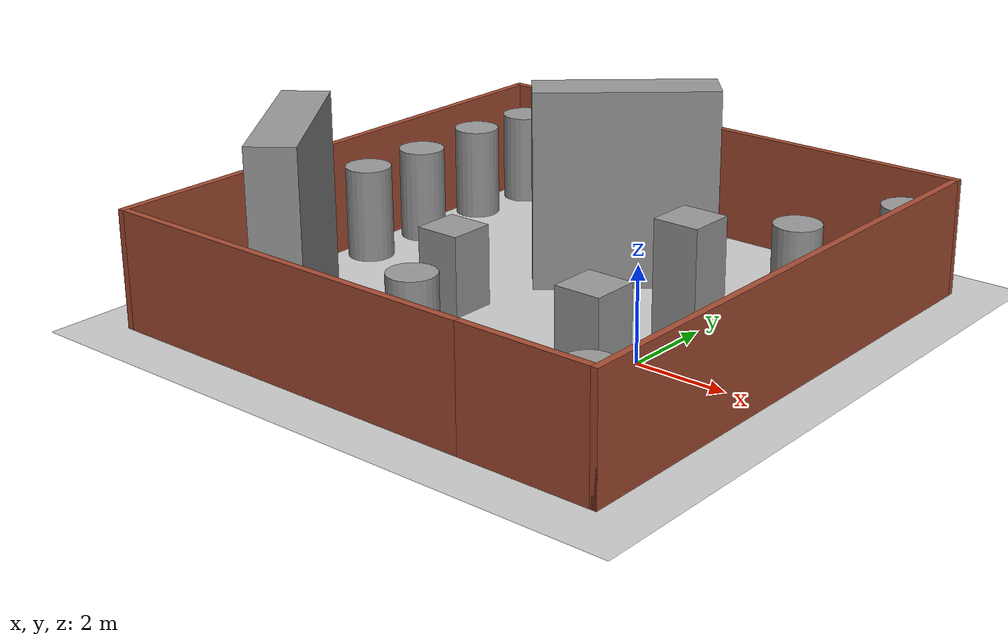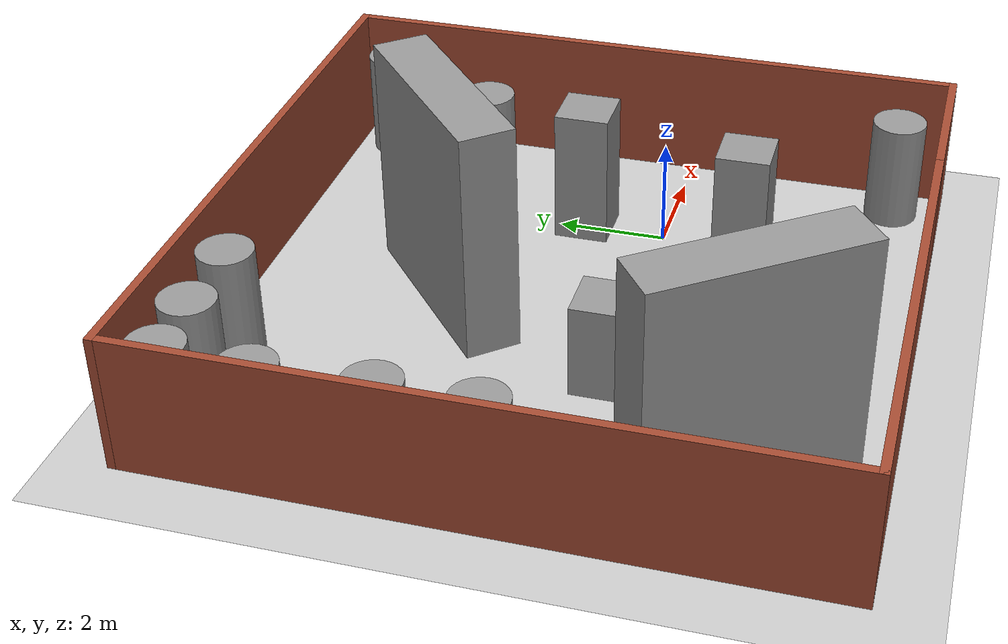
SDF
<sdf version="1.6">
 <world name="default">
  <light name="sun" type="directional">
   <pose>0 0 10 0 -0 0</pose>
   <diffuse>0.8 0.8 0.8 1</diffuse>
   <specular>0.1 0.1 0.1 1</specular>
   <attenuation>
    <range>1000</range>
    <constant>0.9</constant>
    <linear>0.01</linear>
    <quadratic>0.001</quadratic>
   </attenuation>
   <direction>-0.5 0.5 -1</direction>
  </light>
  <model name="ground_plane">
   <static>1</static>
   <link name="link">
    <collision name="collision">
     <geometry><plane><normal>0 0 1</normal><size>100 100</size></plane></geometry>
     <surface><friction><ode><mu>100</mu><mu2>50</mu2></ode></friction></surface>
    </collision>
    <visual name="visual">
     <cast_shadows>0</cast_shadows>
     <geometry><plane><normal>0 0 1</normal><size>100 100</size></plane></geometry>
     <material>
      <script><uri>file://media/materials/scripts/gazebo.material</uri><name>Gazebo/Grey</name></script>
     </material>
    </visual>
   </link>
  </model>
  <gravity>0 0 -9.8</gravity>
  <magnetic_field>6e-06 2.3e-05 -4.2e-05</magnetic_field>
  <atmosphere type="adiabatic"/>
  <physics name="default_physics" default="0" type="ode">
   <max_step_size>0.001</max_step_size>
   <real_time_factor>1</real_time_factor>
   <real_time_update_rate>1000</real_time_update_rate>
  </physics>
  <scene><ambient>0.4 0.4 0.4 1</ambient><background>0.7 0.7 0.7 1</background><shadows>1</shadows></scene>
  <spherical_coordinates>
   <surface_model>EARTH_WGS84</surface_model>
   <latitude_deg>0</latitude_deg>
   <longitude_deg>0</longitude_deg>
   <elevation>0</elevation>
   <heading_deg>0</heading_deg>
  </spherical_coordinates>
  <model name="unit_box_0">
   <pose>-4.61786 -0.010147 0.865917 -5e-06 3e-06 -0.000893</pose>
   <link name="link">
    <inertial>
     <mass>1</mass>
     <inertia>
      <ixx>0.166667</ixx>
      <ixy>0</ixy>
      <ixz>0</ixz>
      <iyy>0.166667</iyy>
      <iyz>0</iyz>
      <izz>0.166667</izz>
     </inertia>
    </inertial>
    <collision name="collision"><geometry><box><size>1 1 1.73184</size></box></geometry></collision>
    <visual name="visual">
     <geometry><box><size>1 1 1.73184</size></box></geometry>
     <material>
      <script><name>Gazebo/Grey</name><uri>file://media/materials/scripts/gazebo.material</uri></script>
     </material>
    </visual>
   </link>
  </model>
  <model name="unit_box_1">
   <pose>0.095283 1.51589 1.27696 -1e-06 1e-06 -0.000601</pose>
   <link name="link">
    <inertial>
     <mass>1</mass>
     <inertia>
      <ixx>0.166667</ixx>
      <ixy>0</ixy>
      <ixz>0</ixz>
      <iyy>0.166667</iyy>
      <iyz>0</iyz>
      <izz>0.166667</izz>
     </inertia>
    </inertial>
    <collision name="collision"><geometry><box><size>1 1 2.55391</size></box></geometry></collision>
    <visual name="visual">
     <geometry><box><size>1 1 2.55391</size></box></geometry>
     <material>
      <script><name>Gazebo/Grey</name><uri>file://media/materials/scripts/gazebo.material</uri></script>
     </material>
    </visual>
   </link>
  </model>
  <model name="unit_box_2">
   <pose>0.113829 -1.48431 1.06098 -1e-06 1e-06 0.000746</pose>
   <link name="link">
    <inertial>
     <mass>1</mass>
     <inertia>
      <ixx>0.166667</ixx>
      <ixy>0</ixy>
      <ixz>0</ixz>
      <iyy>0.166667</iyy>
      <iyz>0</iyz>
      <izz>0.166667</izz>
     </inertia>
    </inertial>
    <collision name="collision"><geometry><box><size>1 1 2.12196</size></box></geometry></collision>
    <visual name="visual">
     <geometry><box><size>1 1 2.12196</size></box></geometry>
     <material>
      <script><name>Gazebo/Grey</name><uri>file://media/materials/scripts/gazebo.material</uri></script>
     </material>
    </visual>
   </link>
  </model>
  <model name="wall_boundary">
   <pose>-2.94 1.005 0 0 -0 0</pose>
   <link name="Wall_0">
    <collision name="Wall_0_Collision">
     <geometry><box><size>3 0.15 2.5</size></box></geometry>
     <pose>0 0 1.25 0 -0 0</pose>
    </collision>
    <visual name="Wall_0_Visual">
     <pose>0 0 1.25 0 -0 0</pose>
     <geometry><box><size>3 0.15 2.5</size></box></geometry>
     <material>
      <script><uri>file://media/materials/scripts/gazebo.material</uri><name>Gazebo/Bricks</name></script>
      <ambient>1 1 1 1</ambient>
     </material>
    </visual>
    <pose>4.375 -5.925 0 0 -0 0</pose>
   </link>
   <link name="Wall_1">
    <collision name="Wall_1_Collision">
     <geometry><box><size>12 0.15 2.5</size></box></geometry>
     <pose>0 0 1.25 0 -0 0</pose>
    </collision>
    <visual name="Wall_1_Visual">
     <pose>0 0 1.25 0 -0 0</pose>
     <geometry><box><size>12 0.15 2.5</size></box></geometry>
     <material>
      <script><uri>file://media/materials/scripts/gazebo.material</uri><name>Gazebo/Bricks</name></script>
      <ambient>1 1 1 1</ambient>
     </material>
    </visual>
    <pose>5.8 0 0 0 -0 1.5708</pose>
   </link>
   <link name="Wall_2">
    <collision name="Wall_2_Collision">
     <geometry><box><size>11.75 0.15 2.5</size></box></geometry>
     <pose>0 0 1.25 0 -0 0</pose>
    </collision>
    <visual name="Wall_2_Visual">
     <pose>0 0 1.25 0 -0 0</pose>
     <geometry><box><size>11.75 0.15 2.5</size></box></geometry>
     <material>
      <script><uri>file://media/materials/scripts/gazebo.material</uri><name>Gazebo/Bricks</name></script>
      <ambient>1 1 1 1</ambient>
     </material>
    </visual>
    <pose>0 5.925 0 0 -0 3.14159</pose>
   </link>
   <link name="Wall_3">
    <collision name="Wall_3_Collision">
     <geometry><box><size>12 0.15 2.5</size></box></geometry>
     <pose>0 0 1.25 0 -0 0</pose>
    </collision>
    <visual name="Wall_3_Visual">
     <pose>0 0 1.25 0 -0 0</pose>
     <geometry><box><size>12 0.15 2.5</size></box></geometry>
     <material>
      <script><uri>file://media/materials/scripts/gazebo.material</uri><name>Gazebo/Bricks</name></script>
      <ambient>1 1 1 1</ambient>
     </material>
    </visual>
    <pose>-5.8 0 0 0 0 -1.5708</pose>
   </link>
   <link name="Wall_4">
    <collision name="Wall_4_Collision">
     <geometry><box><size>8.75 0.15 2.5</size></box></geometry>
     <pose>0 0 1.25 0 -0 0</pose>
    </collision>
    <visual name="Wall_4_Visual">
     <pose>0 0 1.25 0 -0 0</pose>
     <geometry><box><size>8.75 0.15 2.5</size></box></geometry>
     <material>
      <script><uri>file://media/materials/scripts/gazebo.material</uri><name>Gazebo/Bricks</name></script>
      <ambient>1 1 1 1</ambient>
     </material>
    </visual>
    <pose>-1.5 -5.925 0 0 -0 0</pose>
   </link>
   <static>1</static>
  </model>
  <model name="unit_cylinder_0">
   <pose>-8.04355 6.28205 1.01545 0 -0 0</pose>
   <link name="link">
    <inertial>
     <mass>1</mass>
     <inertia><ixx>0.145833</ixx><ixy>0</ixy><ixz>0</ixz><iyy>0.145833</iyy><iyz>0</iyz><izz>0.125</izz></inertia>
    </inertial>
    <collision name="collision">
     <geometry><cylinder><radius>0.5</radius><length>2.03092</length></cylinder></geometry>
    </collision>
    <visual name="visual">
     <geometry><cylinder><radius>0.5</radius><length>2.03092</length></cylinder></geometry>
     <material>
      <script><name>Gazebo/Grey</name><uri>file://media/materials/scripts/gazebo.material</uri></script>
     </material>
    </visual>
   </link>
  </model>
  <model name="unit_cylinder_0_clone">
   <pose>-6.81607 6.33584 1.01545 0 0 -2e-06</pose>
   <link name="link">
    <inertial>
     <mass>1</mass>
     <inertia><ixx>0.145833</ixx><ixy>0</ixy><ixz>0</ixz><iyy>0.145833</iyy><iyz>0</iyz><izz>0.125</izz></inertia>
    </inertial>
    <collision name="collision">
     <geometry><cylinder><radius>0.5</radius><length>2.03092</length></cylinder></geometry>
    </collision>
    <visual name="visual">
     <geometry><cylinder><radius>0.5</radius><length>2.03092</length></cylinder></geometry>
     <material>
      <script><name>Gazebo/Grey</name><uri>file://media/materials/scripts/gazebo.material</uri></script>
     </material>
    </visual>
   </link>
  </model>
  <model name="unit_cylinder_0_clone_0">
   <pose>-5.33163 6.355 1.01546 0 0 -2e-06</pose>
   <link name="link">
    <inertial>
     <mass>1</mass>
     <inertia><ixx>0.145833</ixx><ixy>0</ixy><ixz>0</ixz><iyy>0.145833</iyy><iyz>0</iyz><izz>0.125</izz></inertia>
    </inertial>
    <collision name="collision">
     <geometry><cylinder><radius>0.5</radius><length>2.03092</length></cylinder></geometry>
    </collision>
    <visual name="visual">
     <geometry><cylinder><radius>0.5</radius><length>2.03092</length></cylinder></geometry>
     <material>
      <script><name>Gazebo/Grey</name><uri>file://media/materials/scripts/gazebo.material</uri></script>
     </material>
    </visual>
   </link>
  </model>
  <model name="unit_cylinder_0_clone_1">
   <pose>-8.16498 4.70227 1.01545 0 0 -2e-06</pose>
   <link name="link">
    <inertial>
     <mass>1</mass>
     <inertia><ixx>0.145833</ixx><ixy>0</ixy><ixz>0</ixz><iyy>0.145833</iyy><iyz>0</iyz><izz>0.125</izz></inertia>
    </inertial>
    <collision name="collision">
     <geometry><cylinder><radius>0.5</radius><length>2.03092</length></cylinder></geometry>
    </collision>
    <visual name="visual">
     <geometry><cylinder><radius>0.5</radius><length>2.03092</length></cylinder></geometry>
     <material>
      <script><name>Gazebo/Grey</name><uri>file://media/materials/scripts/gazebo.material</uri></script>
     </material>
    </visual>
   </link>
  </model>
  <model name="unit_cylinder_0_clone_2">
   <pose>-8.05507 2.73037 1.01546 0 0 -1e-06</pose>
   <link name="link">
    <inertial>
     <mass>1</mass>
     <inertia><ixx>0.145833</ixx><ixy>0</ixy><ixz>0</ixz><iyy>0.145833</iyy><iyz>0</iyz><izz>0.125</izz></inertia>
    </inertial>
    <collision name="collision">
     <geometry><cylinder><radius>0.5</radius><length>2.03092</length></cylinder></geometry>
    </collision>
    <visual name="visual">
     <geometry><cylinder><radius>0.5</radius><length>2.03092</length></cylinder></geometry>
     <material>
      <script><name>Gazebo/Grey</name><uri>file://media/materials/scripts/gazebo.material</uri></script>
     </material>
    </visual>
   </link>
  </model>
  <model name="unit_cylinder_0_clone_3">
   <pose>-8.05789 1.05203 1.01546 0 0 -1e-06</pose>
   <link name="link">
    <inertial>
     <mass>1</mass>
     <inertia><ixx>0.145833</ixx><ixy>0</ixy><ixz>0</ixz><iyy>0.145833</iyy><iyz>0</iyz><izz>0.125</izz></inertia>
    </inertial>
    <collision name="collision">
     <geometry><cylinder><radius>0.5</radius><length>2.03092</length></cylinder></geometry>
    </collision>
    <visual name="visual">
     <geometry><cylinder><radius>0.5</radius><length>2.03092</length></cylinder></geometry>
     <material>
      <script><name>Gazebo/Grey</name><uri>file://media/materials/scripts/gazebo.material</uri></script>
     </material>
    </visual>
   </link>
  </model>
  <model name="unit_box_0_clone">
   <pose>-6.4389 -2.62611 2.12344 0 1e-06 -0.929446</pose>
   <link name="link">
    <inertial>
     <mass>1</mass>
     <inertia>
      <ixx>0.166667</ixx>
      <ixy>0</ixy>
      <ixz>0</ixz>
      <iyy>0.166667</iyy>
      <iyz>0</iyz>
      <izz>0.166667</izz>
     </inertia>
    </inertial>
    <collision name="collision"><geometry><box><size>3.84112 1 4.24689</size></box></geometry></collision>
    <visual name="visual">
     <geometry><box><size>3.84112 1 4.24689</size></box></geometry>
     <material>
      <script><name>Gazebo/Grey</name><uri>file://media/materials/scripts/gazebo.material</uri></script>
     </material>
    </visual>
   </link>
  </model>
  <model name="unit_box_0_clone_clone">
   <pose>-2.81995 3.30193 2.12344 -1e-06 -0 0.71497</pose>
   <link name="link">
    <inertial>
     <mass>1</mass>
     <inertia>
      <ixx>0.166667</ixx>
      <ixy>0</ixy>
      <ixz>0</ixz>
      <iyy>0.166667</iyy>
      <iyz>0</iyz>
      <izz>0.166667</izz>
     </inertia>
    </inertial>
    <collision name="collision"><geometry><box><size>3.84112 1 4.24688</size></box></geometry></collision>
    <visual name="visual">
     <geometry><box><size>3.84112 1 4.24688</size></box></geometry>
     <material>
      <script><name>Gazebo/Grey</name><uri>file://media/materials/scripts/gazebo.material</uri></script>
     </material>
    </visual>
   </link>
  </model>
  <model name="unit_cylinder_0_clone_0_clone">
   <pose>2.20198 6.09839 1.01545 0 0 -1e-06</pose>
   <link name="link">
    <inertial>
     <mass>1</mass>
     <inertia><ixx>0.145833</ixx><ixy>0</ixy><ixz>0</ixz><iyy>0.145833</iyy><iyz>0</iyz><izz>0.125</izz></inertia>
    </inertial>
    <collision name="collision">
     <geometry><cylinder><radius>0.5</radius><length>2.03092</length></cylinder></geometry>
    </collision>
    <visual name="visual">
     <geometry><cylinder><radius>0.5</radius><length>2.03092</length></cylinder></geometry>
     <material>
      <script><name>Gazebo/Grey</name><uri>file://media/materials/scripts/gazebo.material</uri></script>
     </material>
    </visual>
   </link>
  </model>
  <model name="unit_cylinder_0_clone_0_clone_0">
   <pose>1.10953 3.7601 1.01546 0 0 -1e-06</pose>
   <link name="link">
    <inertial>
     <mass>1</mass>
     <inertia><ixx>0.145833</ixx><ixy>0</ixy><ixz>0</ixz><iyy>0.145833</iyy><iyz>0</iyz><izz>0.125</izz></inertia>
    </inertial>
    <collision name="collision">
     <geometry><cylinder><radius>0.5</radius><length>2.03092</length></cylinder></geometry>
    </collision>
    <visual name="visual">
     <geometry><cylinder><radius>0.5</radius><length>2.03092</length></cylinder></geometry>
     <material>
      <script><name>Gazebo/Grey</name><uri>file://media/materials/scripts/gazebo.material</uri></script>
     </material>
    </visual>
   </link>
  </model>
  <model name="unit_cylinder_0_clone_0_clone_1">
   <pose>-2.9508 -2.97175 1.01545 0 0 -1e-06</pose>
   <link name="link">
    <inertial>
     <mass>1</mass>
     <inertia><ixx>0.145833</ixx><ixy>0</ixy><ixz>0</ixz><iyy>0.145833</iyy><iyz>0</iyz><izz>0.125</izz></inertia>
    </inertial>
    <collision name="collision">
     <geometry><cylinder><radius>0.5</radius><length>2.03092</length></cylinder></geometry>
    </collision>
    <visual name="visual">
     <geometry><cylinder><radius>0.5</radius><length>2.03092</length></cylinder></geometry>
     <material>
      <script><name>Gazebo/Grey</name><uri>file://media/materials/scripts/gazebo.material</uri></script>
     </material>
    </visual>
   </link>
  </model>
  <model name="unit_cylinder_0_clone_0_clone_2">
   <pose>2.02769 -4.06211 1.01546 0 0 -1e-06</pose>
   <link name="link">
    <inertial>
     <mass>1</mass>
     <inertia><ixx>0.145833</ixx><ixy>0</ixy><ixz>0</ixz><iyy>0.145833</iyy><iyz>0</iyz><izz>0.125</izz></inertia>
    </inertial>
    <collision name="collision">
     <geometry><cylinder><radius>0.5</radius><length>2.03092</length></cylinder></geometry>
    </collision>
    <visual name="visual">
     <geometry><cylinder><radius>0.5</radius><length>2.03092</length></cylinder></geometry>
     <material>
      <script><name>Gazebo/Grey</name><uri>file://media/materials/scripts/gazebo.material</uri></script>
     </material>
    </visual>
   </link>
  </model>
 </world>
</sdf>
